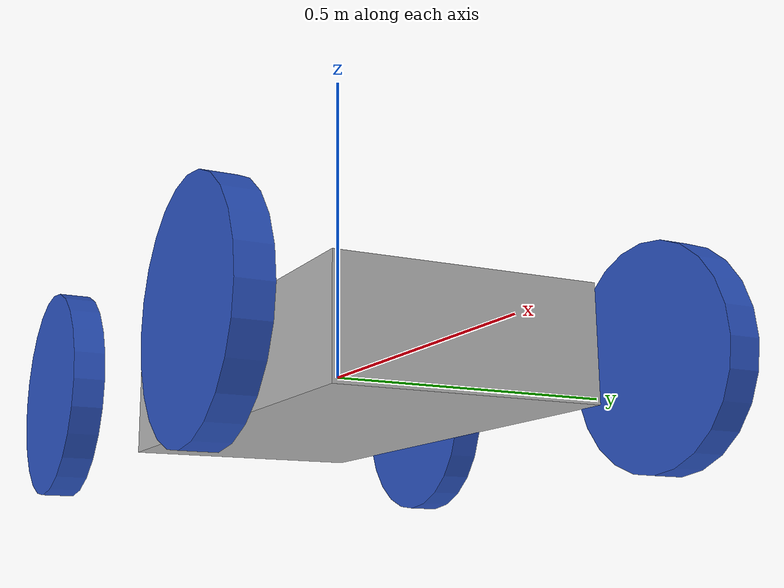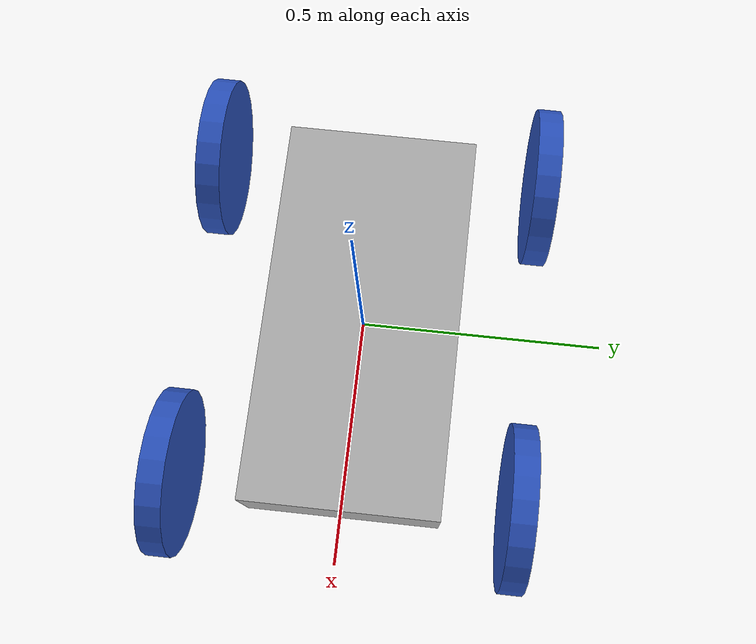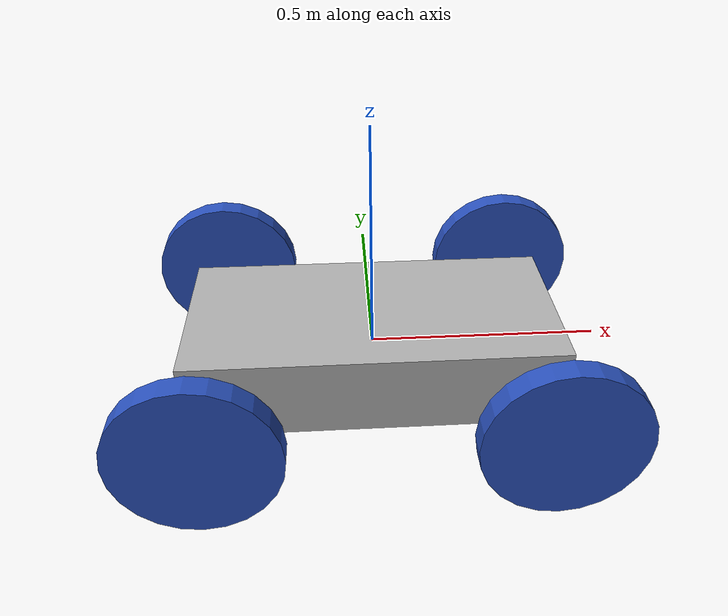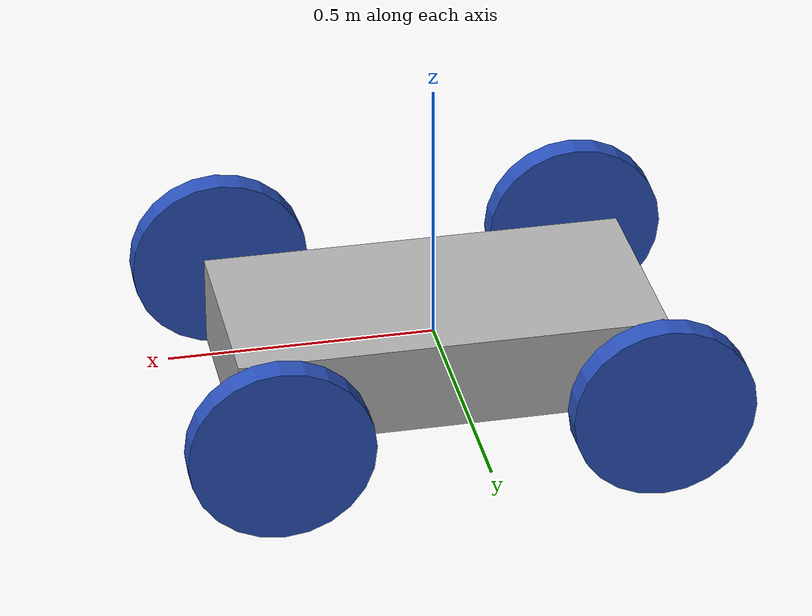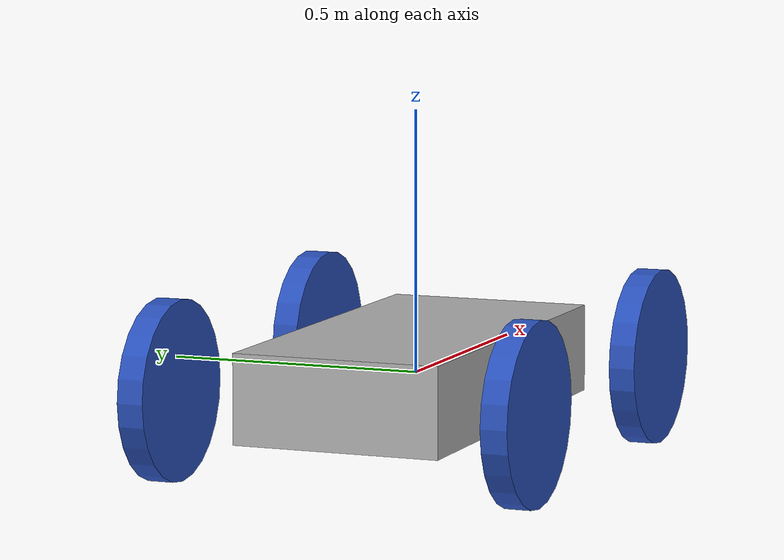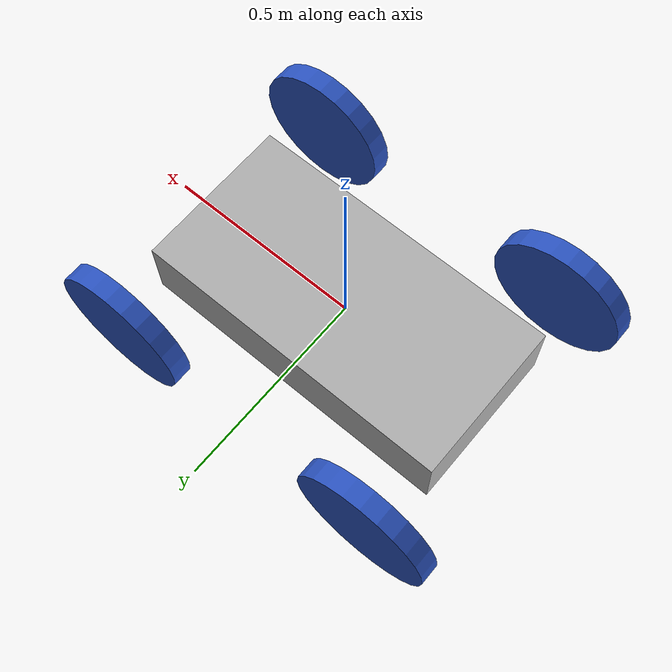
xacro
<?xml version="1.0"?>
<robot name="ackrm_robot"
  xmlns:xacro="http://ros.org/wiki/xacro">

  <!--MATERIALS-->
  <material name="white">
    <color rgba="0.7 0.7 0.7 1" />
  </material>

  <!-- XACRO PROPERTIES -->
  <xacro:property name="base_length" value="0.8" />
  <xacro:property name="base_width" value="0.4" />
  <xacro:property name="base_heigth" value="0.17" />
  <xacro:property name="base_mass" value="${base_length*base_width*base_heigth*500}" />
  <xacro:property name="wheel_radius" value="0.17" />
  <xacro:property name="wheel_heigth" value="0.05" />
  <xacro:property name="wheel_mass" value="${pi*wheel_radius*wheel_radius*wheel_heigth*500}" />
  <xacro:property name="pivot_radius" value="${wheel_heigth/2-0.01}" />
  <xacro:property name="pivot_heigth" value="${1.4*wheel_radius}" />
  <xacro:property name="pivot_mass" value="${pi*pivot_radius*pivot_radius*pivot_heigth*500}" />

  <!-- XACRO LIBRARIES -->
  <xacro:include filename="$(find ackrm_robot)/urdf/inertia.xacro" />
  <xacro:include filename="$(find ackrm_robot)/urdf/cylinder_wheel.xacro" />
  <xacro:include filename="$(find ackrm_robot)/urdf/cylinder_pivot.xacro" />

  <!-- BASE LINK DEFINITION -->
  <link name="base_link">
    <visual>
      <geometry>
        <box size="${base_length} ${base_width} ${base_heigth}" />
      </geometry>
      <material name="white" />
    </visual>
    <collision>
      <geometry>
        <box size="${base_length} ${base_width} ${base_heigth}" />
      </geometry>
    </collision>
    <inertial>
      <mass value="${base_mass}" />
      <origin rpy="0 0 0" xyz="0 0 0" />
      <xacro:box_inertia m="${base_mass}" l="${base_length}" w="${base_width}" h="${base_heigth}"/>
    </inertial>
  </link>

  <!-- STEERING PIVOTS MACRO CALL -->
  <xacro:cylinder_pivot name="right"
    pr="${pivot_radius}"
    ph="${pivot_heigth}"
    pm="${pivot_mass}"
    xpos="0.35"
    ypos="-0.35" />
  <xacro:cylinder_pivot name="left"
    pr="${pivot_radius}"
    ph="${pivot_heigth}"
    pm="${pivot_mass}"
    xpos="0.35"
    ypos="0.35" />

  <!-- WHEELS MACRO CALL -->
  <xacro:cylinder_wheel name="back_right"
    wr="${wheel_radius}"
    wh="${wheel_heigth}"
    wm="${wheel_mass}"
    parent="base_link"
    xpos="-0.35"
    ypos="-0.35" />
  <xacro:cylinder_wheel name="back_left"
    wr="${wheel_radius}"
    wh="${wheel_heigth}"
    wm="${wheel_mass}"
    parent="base_link"
    xpos="-0.35"
    ypos="0.35" />
  <xacro:cylinder_wheel name="front_right"
    wr="${wheel_radius}"
    wh="${wheel_heigth}"
    wm="${wheel_mass}"
    parent="right_steer_pivot"
    xpos="0"
    ypos="0" />
  <xacro:cylinder_wheel name="front_left"
    wr="${wheel_radius}"
    wh="${wheel_heigth}"
    wm="${wheel_mass}"
    parent="left_steer_pivot"
    xpos="0"
    ypos="0" />

  <!-- Gazebo plugin for ROS Control -->
  <gazebo>
    <plugin name="gazebo_ros_control" filename="libgazebo_ros_control.so">
      <robotNamespace>/ackrm</robotNamespace>
    </plugin>
  </gazebo>

</robot>

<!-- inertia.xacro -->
<robot name="inertia"
  xmlns:xacro="http://www.ros.org/wiki/xacro">

  <xacro:macro name="cylinder_inertia" params="m r h">
    <inertia
      ixx="${m*(3*r*r+h*h)/12}" ixy = "0.0" ixz = "0.0"
      iyy="${m*(3*r*r+h*h)/12}" iyz = "0.0"
      izz="${m*r*r/2}" />
  </xacro:macro>

  <xacro:macro name="box_inertia" params="m l w h">
    <inertia
      ixx="${m*(w*w+h*h)/12}" ixy = "0.0" ixz = "0.0"
      iyy="${m*(l*l+h*h)/12}" iyz = "0.0"
      izz="${m*(l*l+w*w)/12}" />
  </xacro:macro>

</robot>

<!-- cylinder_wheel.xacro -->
<robot name="cylinder_wheel"
  xmlns:xacro="http://www.ros.org/wiki/xacro">

  <material name="blue">
    <color rgba="0.164 0.321 0.745 1" />
  </material>

  <xacro:include filename="$(find ackrm_robot)/urdf/inertia.xacro" />

  <xacro:macro name="cylinder_wheel" params="name wr wh wm parent xpos ypos">
    <link name="${name}_wheel">
      <visual>
        <geometry>
          <cylinder length="${wh}" radius="${wr}" />
        </geometry>
        <origin rpy="1.57 0 0" xyz="0 0 0" />
        <material name="blue" />
      </visual>
      <collision>
        <geometry>
          <cylinder length="${wh}" radius="${wr}" />
        </geometry>
        <origin rpy="1.57 0 0" xyz="0 0 0" />
      </collision>
      <inertial>
        <mass value="${wm}" />
        <origin rpy="1.57 0 0" xyz="0 0 0" />
        <xacro:cylinder_inertia m="${wm}" r="${wr}" h="${wh}" />
      </inertial>
    </link>

    <joint name="${name}_wheel_joint" type="continuous">
      <parent link="${parent}" />
      <child link="${name}_wheel" />
      <origin xyz="${xpos} ${ypos} 0" rpy="0 0 0" />
      <axis xyz="0 1 0" rpy="0  0" />
      <limit effort="1000" velocity="100" />
      <joint_properties damping="0.0" friction="10.0" />
    </joint>

    <transmission name="${name}_wheel_trans">
      <type>transmission_interface/SimpleTransmission</type>
      <joint name="${name}_wheel_joint">
        <hardwareInterface>hardware_interface/VelocityJointInterface</hardwareInterface>
      </joint>
      <actuator name="${name}_wheel_motor">
        <mechanicalReduction>1</mechanicalReduction>
      </actuator>
    </transmission>

    <gazebo reference="${name}_wheel">
      <mu1 value="200.0" />
      <mu2 value="100.0" />
      <fdir1 value="1 0 0" />
      <kp value="10000000.0" />
      <kd value="1.0" />
      <material>Gazebo/Blue</material>
      <turnGravityOff>false</turnGravityOff>
    </gazebo>
  </xacro:macro>

</robot>

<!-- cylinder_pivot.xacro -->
<robot name="cylinder_pivot"
  xmlns:xacro="http://www.ros.org/wiki/xacro">

  <material name="red">
    <color rgba="0.6 0 0 1" />
  </material>

  <xacro:include filename="$(find ackrm_robot)/urdf/inertia.xacro" />

  <xacro:macro name="cylinder_pivot" params="name pr ph pm xpos ypos">
    <link name="${name}_steer_pivot">
      <visual>
        <geometry>
          <cylinder length="${ph}" radius="${pr}" />
        </geometry>
        <origin rpy="0 0 0" xyz="0 0 0" />
        <material name="red" />
      </visual>
      <inertial>
        <mass value="${pm}" />
        <origin rpy="0 0 0" xyz="0 0 0" />
        <xacro:cylinder_inertia m="${pm}" r="${pr}" h="${ph}" />
      </inertial>
    </link>

    <joint name="${name}_steer_joint" type="revolute">
      <parent link="base_link" />
      <child link="${name}_steer_pivot" />
      <origin xyz="${xpos} ${ypos} 0" rpy="0 0 0" />
      <axis xyz="0 0 1" rpy="0  0" />
      <limit lower="${-pi/4}" upper="${pi/4}" effort="1000" velocity="100" />
      <joint_properties damping="0.0" friction="100.0" />
    </joint>

    <transmission name="${name}_pivot_trans">
      <type>transmission_interface/SimpleTransmission</type>
      <joint name="${name}_steer_joint">
        <hardwareInterface>hardware_interface/PositionJointInterface</hardwareInterface>
      </joint>
      <actuator name="${name}_steer_motor">
        <mechanicalReduction>1</mechanicalReduction>
      </actuator>
    </transmission>

    <gazebo reference="${name}_steer_pivot">
      <mu1 value="1.0" />
      <mu2 value="1.0" />
      <fdir1 value="0 0 1" />
      <kp value="10000000.0" />
      <kd value="1.0" />
      <material>Gazebo/Red</material>
      <turnGravityOff>false</turnGravityOff>
    </gazebo>
  </xacro:macro>

</robot>
